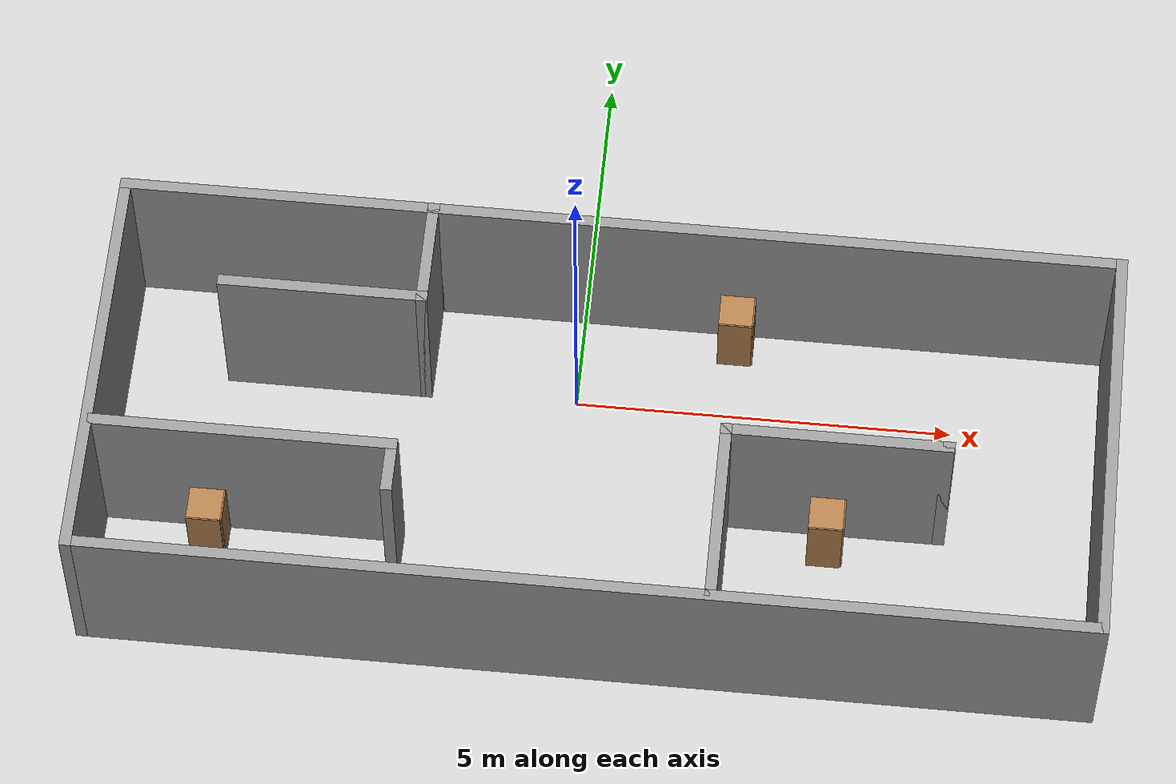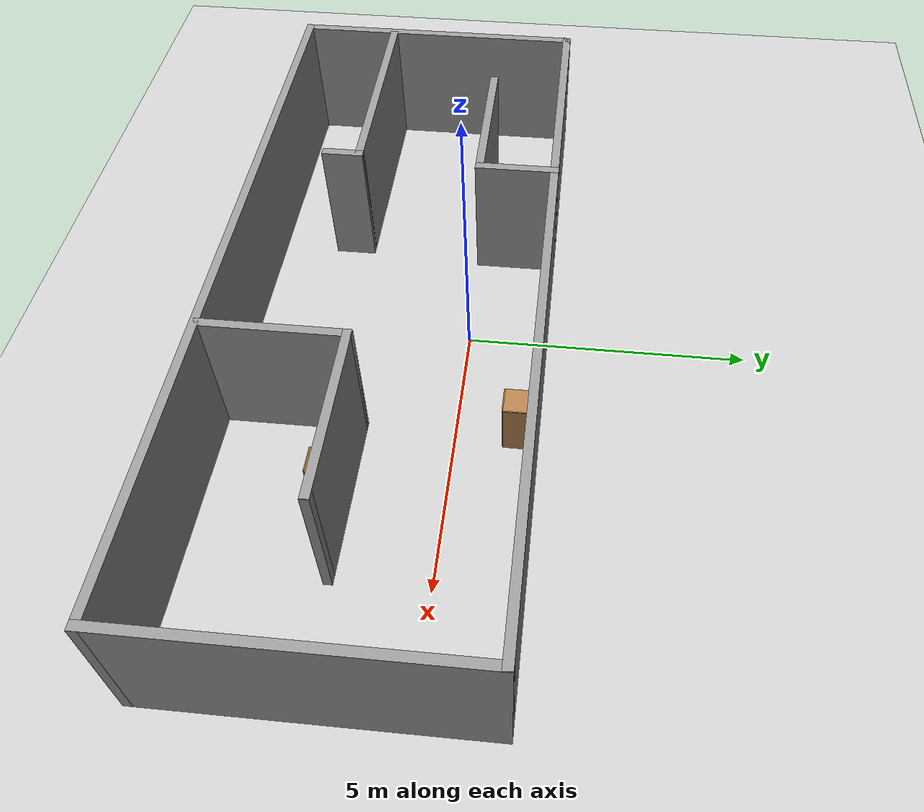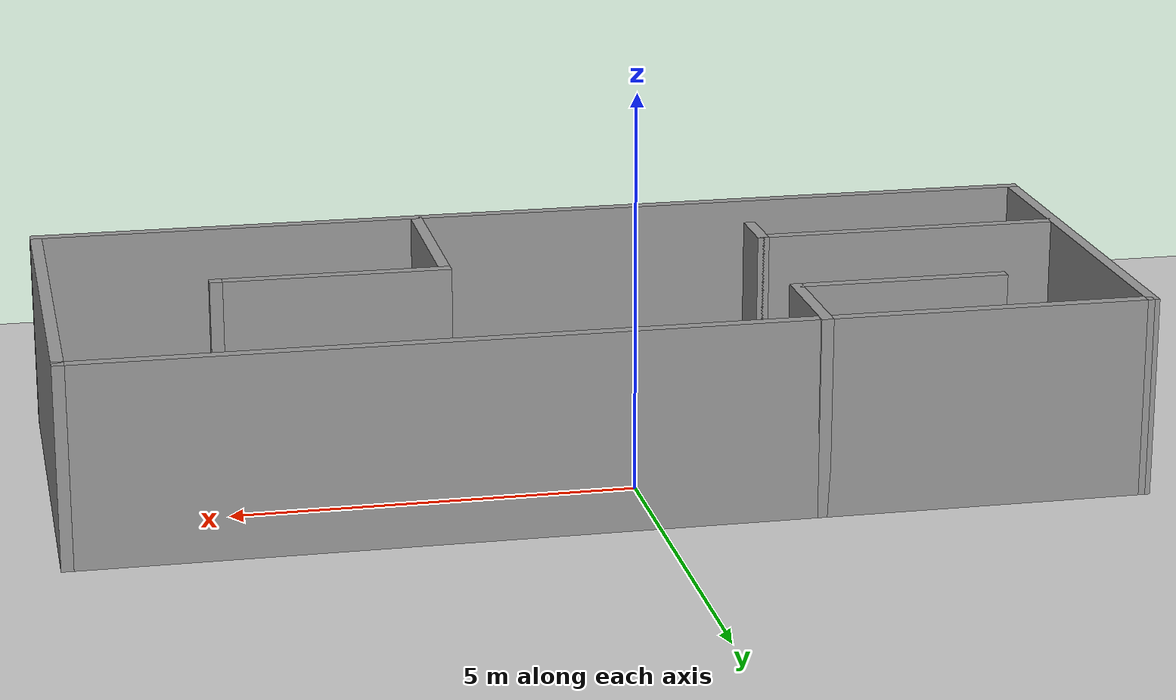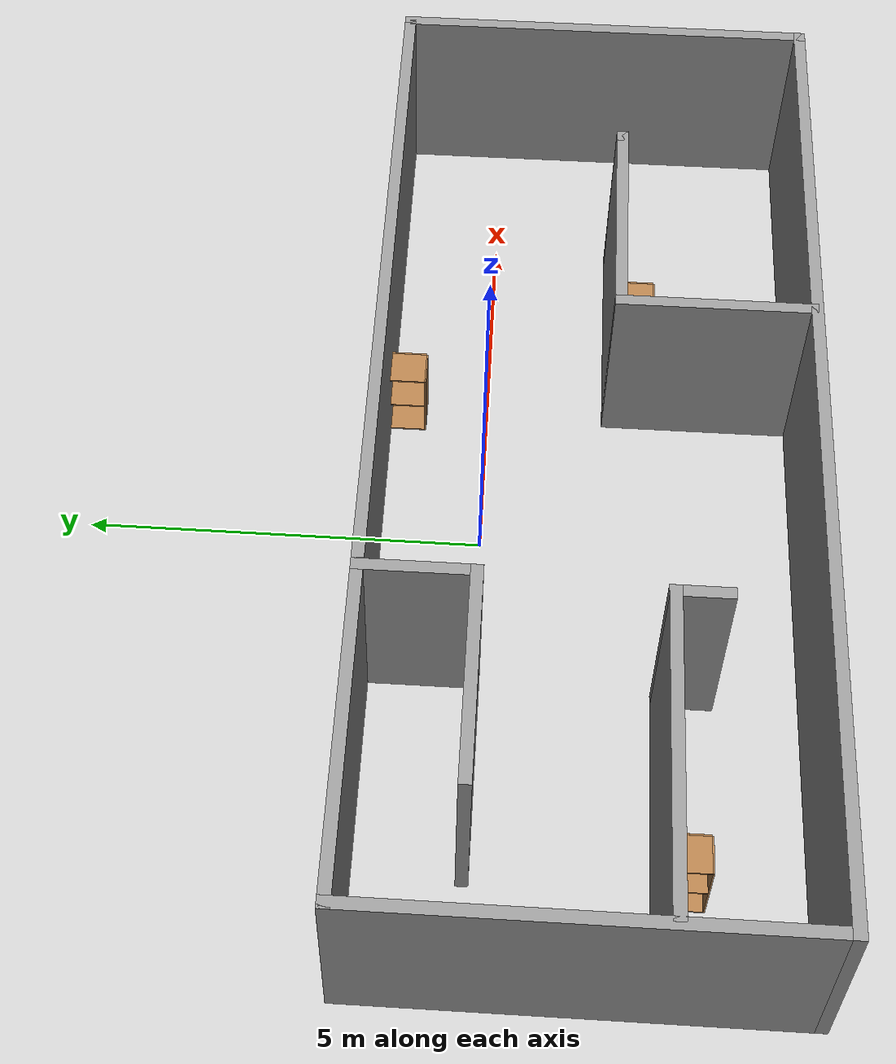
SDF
<sdf version="1.7">
 <world name="default">
  <light name="sun" type="directional">
   <pose>0 0 10 0 -0 0</pose>
   <diffuse>0.8 0.8 0.8 1</diffuse>
   <specular>0.2 0.2 0.2 1</specular>
   <attenuation>
    <range>1000</range>
    <constant>0.9</constant>
    <linear>0.01</linear>
    <quadratic>0.001</quadratic>
   </attenuation>
   <direction>-0.5 0.1 -0.9</direction>
   <spot><inner_angle>0</inner_angle><outer_angle>0</outer_angle><falloff>0</falloff></spot>
  </light>
  <model name="ground_plane">
   <static>1</static>
   <link name="link">
    <collision name="collision">
     <geometry><plane><normal>0 0 1</normal><size>100 100</size></plane></geometry>
     <surface><friction><ode><mu>100</mu><mu2>50</mu2></ode></friction></surface>
    </collision>
    <visual name="visual">
     <cast_shadows>0</cast_shadows>
     <geometry><plane><normal>0 0 1</normal><size>100 100</size></plane></geometry>
     <material>
      <script><uri>file://media/materials/scripts/gazebo.material</uri><name>Gazebo/Grey</name></script>
     </material>
    </visual>
   </link>
  </model>
  <gravity>0 0 -9.8</gravity>
  <magnetic_field>6e-06 2.3e-05 -4.2e-05</magnetic_field>
  <atmosphere type="adiabatic"/>
  <physics type="ode">
   <max_step_size>0.001</max_step_size>
   <real_time_factor>1</real_time_factor>
   <real_time_update_rate>1000</real_time_update_rate>
  </physics>
  <scene><ambient>0.4 0.4 0.4 1</ambient><background>0.7 0.7 0.7 1</background><shadows>1</shadows></scene>
  <audio><device>default</device></audio>
  <spherical_coordinates>
   <surface_model>EARTH_WGS84</surface_model>
   <latitude_deg>0</latitude_deg>
   <longitude_deg>0</longitude_deg>
   <elevation>0</elevation>
   <heading_deg>0</heading_deg>
  </spherical_coordinates>
  <model name="room">
   <pose>0.463856 -0.836339 0 0 -0 0</pose>
   <link name="Wall_0">
    <collision name="Wall_0_Collision">
     <geometry><box><size>13.25 0.15 2.5</size></box></geometry>
     <pose>0 0 1.25 0 -0 0</pose>
    </collision>
    <visual name="Wall_0_Visual">
     <pose>0 0 1.25 0 -0 0</pose>
     <geometry><box><size>13.25 0.15 2.5</size></box></geometry>
     <material>
      <script><uri>file://media/materials/scripts/gazebo.material</uri><name>Gazebo/Grey</name></script>
      <ambient>1 1 1 1</ambient>
     </material>
     <meta><layer>0</layer></meta>
    </visual>
    <pose>-0 2.1825 0 0 -0 0</pose>
   </link>
   <link name="Wall_1">
    <collision name="Wall_1_Collision">
     <geometry><box><size>5.5 0.15 2.5</size></box></geometry>
     <pose>0 0 1.25 0 -0 0</pose>
    </collision>
    <visual name="Wall_1_Visual">
     <pose>0 0 1.25 0 -0 0</pose>
     <geometry><box><size>5.5 0.15 2.5</size></box></geometry>
     <material>
      <script><uri>file://media/materials/scripts/gazebo.material</uri><name>Gazebo/Grey</name></script>
      <ambient>1 1 1 1</ambient>
     </material>
     <meta><layer>0</layer></meta>
    </visual>
    <pose>6.55 -0.4925 0 0 -0 -1.5708</pose>
   </link>
   <link name="Wall_10">
    <collision name="Wall_10_Collision">
     <geometry><box><size>4 0.15 2.5</size></box></geometry>
     <pose>0 0 1.25 0 -0 0</pose>
    </collision>
    <visual name="Wall_10_Visual">
     <pose>0 0 1.25 0 -0 0</pose>
     <geometry><box><size>4 0.15 2.5</size></box></geometry>
     <material>
      <script><uri>file://media/materials/scripts/gazebo.material</uri><name>Gazebo/Grey</name></script>
      <ambient>1 1 1 1</ambient>
     </material>
     <meta><layer>0</layer></meta>
    </visual>
    <pose>-4.535 -1.3875 0 0 -0 0</pose>
   </link>
   <link name="Wall_11">
    <collision name="Wall_11_Collision">
     <geometry><box><size>0.75 0.15 2.5</size></box></geometry>
     <pose>0 0 1.25 0 -0 0</pose>
    </collision>
    <visual name="Wall_11_Visual">
     <pose>0 0 1.25 0 -0 0</pose>
     <geometry><box><size>0.75 0.15 2.5</size></box></geometry>
     <material>
      <script><uri>file://media/materials/scripts/gazebo.material</uri><name>Gazebo/Grey</name></script>
      <ambient>1 1 1 1</ambient>
     </material>
     <meta><layer>0</layer></meta>
    </visual>
    <pose>-2.61 -1.6875 0 0 -0 -1.5708</pose>
   </link>
   <link name="Wall_13">
    <collision name="Wall_13_Collision">
     <geometry><box><size>2.5 0.15 2.5</size></box></geometry>
     <pose>0 0 1.25 0 -0 0</pose>
    </collision>
    <visual name="Wall_13_Visual">
     <pose>0 0 1.25 0 -0 0</pose>
     <geometry><box><size>2.5 0.15 2.5</size></box></geometry>
     <material>
      <script><uri>file://media/materials/scripts/gazebo.material</uri><name>Gazebo/Grey</name></script>
      <ambient>1 1 1 1</ambient>
     </material>
     <meta><layer>0</layer></meta>
    </visual>
    <pose>1.62 -1.9325 0 0 -0 1.5708</pose>
   </link>
   <link name="Wall_14">
    <collision name="Wall_14_Collision">
     <geometry><box><size>3 0.15 2.5</size></box></geometry>
     <pose>0 0 1.25 0 -0 0</pose>
    </collision>
    <visual name="Wall_14_Visual">
     <pose>0 0 1.25 0 -0 0</pose>
     <geometry><box><size>3 0.15 2.5</size></box></geometry>
     <material>
      <script><uri>file://media/materials/scripts/gazebo.material</uri><name>Gazebo/Grey</name></script>
      <ambient>1 1 1 1</ambient>
     </material>
     <meta><layer>0</layer></meta>
    </visual>
    <pose>3.045 -0.7575 0 0 -0 0</pose>
   </link>
   <link name="Wall_15">
    <collision name="Wall_15_Collision">
     <geometry><box><size>0.16 0.15 2.5</size></box></geometry>
     <pose>0 0 1.25 0 -0 0</pose>
    </collision>
    <visual name="Wall_15_Visual">
     <pose>0 0 1.25 0 -0 0</pose>
     <geometry><box><size>0.16 0.15 2.5</size></box></geometry>
     <material>
      <script><uri>file://media/materials/scripts/gazebo.material</uri><name>Gazebo/Grey</name></script>
      <ambient>1 1 1 1</ambient>
     </material>
     <meta><layer>0</layer></meta>
    </visual>
    <pose>4.475 -0.7575 0 0 -0 0</pose>
   </link>
   <link name="Wall_2">
    <collision name="Wall_2_Collision">
     <geometry><box><size>13.25 0.15 2.5</size></box></geometry>
     <pose>0 0 1.25 0 -0 0</pose>
    </collision>
    <visual name="Wall_2_Visual">
     <pose>0 0 1.25 0 -0 0</pose>
     <geometry><box><size>13.25 0.15 2.5</size></box></geometry>
     <material>
      <script><uri>file://media/materials/scripts/gazebo.material</uri><name>Gazebo/Grey</name></script>
      <ambient>1 1 1 1</ambient>
     </material>
     <meta><layer>0</layer></meta>
    </visual>
    <pose>-0 -3.1675 0 0 -0 3.14159</pose>
   </link>
   <link name="Wall_3">
    <collision name="Wall_3_Collision">
     <geometry><box><size>5.5 0.15 2.5</size></box></geometry>
     <pose>0 0 1.25 0 -0 0</pose>
    </collision>
    <visual name="Wall_3_Visual">
     <pose>0 0 1.25 0 -0 0</pose>
     <geometry><box><size>5.5 0.15 2.5</size></box></geometry>
     <material>
      <script><uri>file://media/materials/scripts/gazebo.material</uri><name>Gazebo/Grey</name></script>
      <ambient>1 1 1 1</ambient>
     </material>
     <meta><layer>0</layer></meta>
    </visual>
    <pose>-6.55 -0.4925 0 0 -0 1.5708</pose>
   </link>
   <link name="Wall_4">
    <collision name="Wall_4_Collision">
     <geometry><box><size>0.15 0.15 2.5</size></box></geometry>
     <pose>0 0 1.25 0 -0 0</pose>
    </collision>
    <visual name="Wall_4_Visual">
     <pose>0 0 1.25 0 -0 0</pose>
     <geometry><box><size>0.15 0.15 2.5</size></box></geometry>
     <material>
      <script><uri>file://media/materials/scripts/gazebo.material</uri><name>Gazebo/Grey</name></script>
      <ambient>1 1 1 1</ambient>
     </material>
     <meta><layer>0</layer></meta>
    </visual>
    <pose>-6.55 2.1825 0 0 -0 0</pose>
   </link>
   <link name="Wall_6">
    <collision name="Wall_6_Collision">
     <geometry><box><size>2.75 0.15 2.5</size></box></geometry>
     <pose>0 0 1.25 0 -0 0</pose>
    </collision>
    <visual name="Wall_6_Visual">
     <pose>0 0 1.25 0 -0 0</pose>
     <geometry><box><size>2.75 0.15 2.5</size></box></geometry>
     <material>
      <script><uri>file://media/materials/scripts/gazebo.material</uri><name>Gazebo/Grey</name></script>
      <ambient>1 1 1 1</ambient>
     </material>
     <meta><layer>0</layer></meta>
    </visual>
    <pose>-3.78 0.8325 0 0 -0 0</pose>
   </link>
   <link name="Wall_7">
    <collision name="Wall_7_Collision">
     <geometry><box><size>1.5 0.15 2.5</size></box></geometry>
     <pose>0 0 1.25 0 -0 0</pose>
    </collision>
    <visual name="Wall_7_Visual">
     <pose>0 0 1.25 0 -0 0</pose>
     <geometry><box><size>1.5 0.15 2.5</size></box></geometry>
     <material>
      <script><uri>file://media/materials/scripts/gazebo.material</uri><name>Gazebo/Grey</name></script>
      <ambient>1 1 1 1</ambient>
     </material>
     <meta><layer>0</layer></meta>
    </visual>
    <pose>-2.48 1.5075 0 0 -0 1.5708</pose>
   </link>
   <link name="Wall_8">
    <collision name="Wall_8_Collision">
     <geometry><box><size>0.16 0.15 2.5</size></box></geometry>
     <pose>0 0 1.25 0 -0 0</pose>
    </collision>
    <visual name="Wall_8_Visual">
     <pose>0 0 1.25 0 -0 0</pose>
     <geometry><box><size>0.16 0.15 2.5</size></box></geometry>
     <material>
      <script><uri>file://media/materials/scripts/gazebo.material</uri><name>Gazebo/Grey</name></script>
      <ambient>1 1 1 1</ambient>
     </material>
     <meta><layer>0</layer></meta>
    </visual>
    <pose>-2.475 2.1825 0 0 -0 0</pose>
   </link>
   <static>1</static>
  </model>
  <model name="cabinet_0">
   <static>1</static>
   <link name="cabinet_bottom_plate">
    <inertial>
     <pose>0 0 -1 0 -0 0</pose>
     <inertia><ixx>2.05</ixx><ixy>0</ixy><ixz>0</ixz><iyy>2.05</iyy><iyz>0</iyz><izz>2.05</izz></inertia>
     <mass>25</mass>
    </inertial>
    <collision name="cabinet_bottom_plate_geom">
     <pose>0 0 0.01 0 -0 0</pose>
     <geometry><box><size>0.45 0.45 0.02</size></box></geometry>
    </collision>
    <visual name="cabinet_bottom_plate_geom_visual">
     <pose>0 0 0.01 0 -0 0</pose>
     <geometry><box><size>0.45 0.45 0.02</size></box></geometry>
     <material>
      <script><uri>file://media/materials/scripts/gazebo.material</uri><name>Gazebo/Wood</name></script>
     </material>
    </visual>
    <collision name="cabinet_bottom_plate_geom_cabinet_back_plate">
     <pose>0.235 0 0.51 0 -0 0</pose>
     <geometry><box><size>0.02 0.45 1.02</size></box></geometry>
    </collision>
    <visual name="cabinet_bottom_plate_geom_cabinet_back_plate_visual">
     <pose>0.235 0 0.51 0 -0 0</pose>
     <geometry><box><size>0.02 0.45 1.02</size></box></geometry>
     <material>
      <script><uri>file://media/materials/scripts/gazebo.material</uri><name>Gazebo/Wood</name></script>
     </material>
    </visual>
    <collision name="cabinet_bottom_plate_geom_cabinet_left_plate">
     <pose>0 0.235 0.51 0 -0 0</pose>
     <geometry><box><size>0.45 0.02 1.02</size></box></geometry>
    </collision>
    <visual name="cabinet_bottom_plate_geom_cabinet_left_plate_visual">
     <pose>0 0.235 0.51 0 -0 0</pose>
     <geometry><box><size>0.45 0.02 1.02</size></box></geometry>
     <material>
      <script><uri>file://media/materials/scripts/gazebo.material</uri><name>Gazebo/Wood</name></script>
     </material>
    </visual>
    <collision name="cabinet_bottom_plate_geom_cabinet_middle_plate">
     <pose>0 0 0.51 0 -0 0</pose>
     <geometry><box><size>0.45 0.45 0.02</size></box></geometry>
    </collision>
    <visual name="cabinet_bottom_plate_geom_cabinet_middle_plate_visual">
     <pose>0 0 0.51 0 -0 0</pose>
     <geometry><box><size>0.45 0.45 0.02</size></box></geometry>
     <material>
      <script><uri>file://media/materials/scripts/gazebo.material</uri><name>Gazebo/Wood</name></script>
     </material>
    </visual>
    <collision name="cabinet_bottom_plate_geom_cabinet_right_plate">
     <pose>0 -0.235 0.51 0 -0 0</pose>
     <geometry><box><size>0.45 0.02 1.02</size></box></geometry>
    </collision>
    <visual name="cabinet_bottom_plate_geom_cabinet_right_plate_visual">
     <pose>0 -0.235 0.51 0 -0 0</pose>
     <geometry><box><size>0.45 0.02 1.02</size></box></geometry>
     <material>
      <script><uri>file://media/materials/scripts/gazebo.material</uri><name>Gazebo/Wood</name></script>
     </material>
    </visual>
    <collision name="cabinet_bottom_plate_geom_cabinet_top_plate">
     <pose>0 0 1.01 0 -0 0</pose>
     <geometry><box><size>0.45 0.45 0.02</size></box></geometry>
    </collision>
    <visual name="cabinet_bottom_plate_geom_cabinet_top_plate_visual">
     <pose>0 0 1.01 0 -0 0</pose>
     <geometry><box><size>0.45 0.45 0.02</size></box></geometry>
     <material>
      <script><uri>file://media/materials/scripts/gazebo.material</uri><name>Gazebo/Wood</name></script>
     </material>
    </visual>
   </link>
   <pose>2.0346 1.05139 0 0 -0 0</pose>
  </model>
  <model name="cabinet_1">
   <static>1</static>
   <link name="cabinet_bottom_plate">
    <inertial>
     <pose>0 0 -1 0 -0 0</pose>
     <inertia><ixx>2.05</ixx><ixy>0</ixy><ixz>0</ixz><iyy>2.05</iyy><iyz>0</iyz><izz>2.05</izz></inertia>
     <mass>25</mass>
    </inertial>
    <collision name="cabinet_bottom_plate_geom">
     <pose>0 0 0.01 0 -0 0</pose>
     <geometry><box><size>0.45 0.45 0.02</size></box></geometry>
    </collision>
    <visual name="cabinet_bottom_plate_geom_visual">
     <pose>0 0 0.01 0 -0 0</pose>
     <geometry><box><size>0.45 0.45 0.02</size></box></geometry>
     <material>
      <script><uri>file://media/materials/scripts/gazebo.material</uri><name>Gazebo/Wood</name></script>
     </material>
    </visual>
    <collision name="cabinet_bottom_plate_geom_cabinet_back_plate">
     <pose>0.235 0 0.51 0 -0 0</pose>
     <geometry><box><size>0.02 0.45 1.02</size></box></geometry>
    </collision>
    <visual name="cabinet_bottom_plate_geom_cabinet_back_plate_visual">
     <pose>0.235 0 0.51 0 -0 0</pose>
     <geometry><box><size>0.02 0.45 1.02</size></box></geometry>
     <material>
      <script><uri>file://media/materials/scripts/gazebo.material</uri><name>Gazebo/Wood</name></script>
     </material>
    </visual>
    <collision name="cabinet_bottom_plate_geom_cabinet_left_plate">
     <pose>0 0.235 0.51 0 -0 0</pose>
     <geometry><box><size>0.45 0.02 1.02</size></box></geometry>
    </collision>
    <visual name="cabinet_bottom_plate_geom_cabinet_left_plate_visual">
     <pose>0 0.235 0.51 0 -0 0</pose>
     <geometry><box><size>0.45 0.02 1.02</size></box></geometry>
     <material>
      <script><uri>file://media/materials/scripts/gazebo.material</uri><name>Gazebo/Wood</name></script>
     </material>
    </visual>
    <collision name="cabinet_bottom_plate_geom_cabinet_middle_plate">
     <pose>0 0 0.51 0 -0 0</pose>
     <geometry><box><size>0.45 0.45 0.02</size></box></geometry>
    </collision>
    <visual name="cabinet_bottom_plate_geom_cabinet_middle_plate_visual">
     <pose>0 0 0.51 0 -0 0</pose>
     <geometry><box><size>0.45 0.45 0.02</size></box></geometry>
     <material>
      <script><uri>file://media/materials/scripts/gazebo.material</uri><name>Gazebo/Wood</name></script>
     </material>
    </visual>
    <collision name="cabinet_bottom_plate_geom_cabinet_right_plate">
     <pose>0 -0.235 0.51 0 -0 0</pose>
     <geometry><box><size>0.45 0.02 1.02</size></box></geometry>
    </collision>
    <visual name="cabinet_bottom_plate_geom_cabinet_right_plate_visual">
     <pose>0 -0.235 0.51 0 -0 0</pose>
     <geometry><box><size>0.45 0.02 1.02</size></box></geometry>
     <material>
      <script><uri>file://media/materials/scripts/gazebo.material</uri><name>Gazebo/Wood</name></script>
     </material>
    </visual>
    <collision name="cabinet_bottom_plate_geom_cabinet_top_plate">
     <pose>0 0 1.01 0 -0 0</pose>
     <geometry><box><size>0.45 0.45 0.02</size></box></geometry>
    </collision>
    <visual name="cabinet_bottom_plate_geom_cabinet_top_plate_visual">
     <pose>0 0 1.01 0 -0 0</pose>
     <geometry><box><size>0.45 0.45 0.02</size></box></geometry>
     <material>
      <script><uri>file://media/materials/scripts/gazebo.material</uri><name>Gazebo/Wood</name></script>
     </material>
    </visual>
   </link>
   <pose>-4.61201 -2.51943 0 0 -0 0</pose>
  </model>
  <model name="cabinet">
   <static>1</static>
   <link name="cabinet_bottom_plate">
    <inertial>
     <pose>0 0 -1 0 -0 0</pose>
     <inertia><ixx>2.05</ixx><ixy>0</ixy><ixz>0</ixz><iyy>2.05</iyy><iyz>0</iyz><izz>2.05</izz></inertia>
     <mass>25</mass>
    </inertial>
    <collision name="cabinet_bottom_plate_geom">
     <pose>0 0 0.01 0 -0 0</pose>
     <geometry><box><size>0.45 0.45 0.02</size></box></geometry>
    </collision>
    <visual name="cabinet_bottom_plate_geom_visual">
     <pose>0 0 0.01 0 -0 0</pose>
     <geometry><box><size>0.45 0.45 0.02</size></box></geometry>
     <material>
      <script><uri>file://media/materials/scripts/gazebo.material</uri><name>Gazebo/Wood</name></script>
     </material>
    </visual>
    <collision name="cabinet_bottom_plate_geom_cabinet_back_plate">
     <pose>0.235 0 0.51 0 -0 0</pose>
     <geometry><box><size>0.02 0.45 1.02</size></box></geometry>
    </collision>
    <visual name="cabinet_bottom_plate_geom_cabinet_back_plate_visual">
     <pose>0.235 0 0.51 0 -0 0</pose>
     <geometry><box><size>0.02 0.45 1.02</size></box></geometry>
     <material>
      <script><uri>file://media/materials/scripts/gazebo.material</uri><name>Gazebo/Wood</name></script>
     </material>
    </visual>
    <collision name="cabinet_bottom_plate_geom_cabinet_left_plate">
     <pose>0 0.235 0.51 0 -0 0</pose>
     <geometry><box><size>0.45 0.02 1.02</size></box></geometry>
    </collision>
    <visual name="cabinet_bottom_plate_geom_cabinet_left_plate_visual">
     <pose>0 0.235 0.51 0 -0 0</pose>
     <geometry><box><size>0.45 0.02 1.02</size></box></geometry>
     <material>
      <script><uri>file://media/materials/scripts/gazebo.material</uri><name>Gazebo/Wood</name></script>
     </material>
    </visual>
    <collision name="cabinet_bottom_plate_geom_cabinet_middle_plate">
     <pose>0 0 0.51 0 -0 0</pose>
     <geometry><box><size>0.45 0.45 0.02</size></box></geometry>
    </collision>
    <visual name="cabinet_bottom_plate_geom_cabinet_middle_plate_visual">
     <pose>0 0 0.51 0 -0 0</pose>
     <geometry><box><size>0.45 0.45 0.02</size></box></geometry>
     <material>
      <script><uri>file://media/materials/scripts/gazebo.material</uri><name>Gazebo/Wood</name></script>
     </material>
    </visual>
    <collision name="cabinet_bottom_plate_geom_cabinet_right_plate">
     <pose>0 -0.235 0.51 0 -0 0</pose>
     <geometry><box><size>0.45 0.02 1.02</size></box></geometry>
    </collision>
    <visual name="cabinet_bottom_plate_geom_cabinet_right_plate_visual">
     <pose>0 -0.235 0.51 0 -0 0</pose>
     <geometry><box><size>0.45 0.02 1.02</size></box></geometry>
     <material>
      <script><uri>file://media/materials/scripts/gazebo.material</uri><name>Gazebo/Wood</name></script>
     </material>
    </visual>
    <collision name="cabinet_bottom_plate_geom_cabinet_top_plate">
     <pose>0 0 1.01 0 -0 0</pose>
     <geometry><box><size>0.45 0.45 0.02</size></box></geometry>
    </collision>
    <visual name="cabinet_bottom_plate_geom_cabinet_top_plate_visual">
     <pose>0 0 1.01 0 -0 0</pose>
     <geometry><box><size>0.45 0.45 0.02</size></box></geometry>
     <material>
      <script><uri>file://media/materials/scripts/gazebo.material</uri><name>Gazebo/Wood</name></script>
     </material>
    </visual>
   </link>
   <pose>3.45142 -1.89436 0 0 -0 0</pose>
  </model>
 </world>
</sdf>
